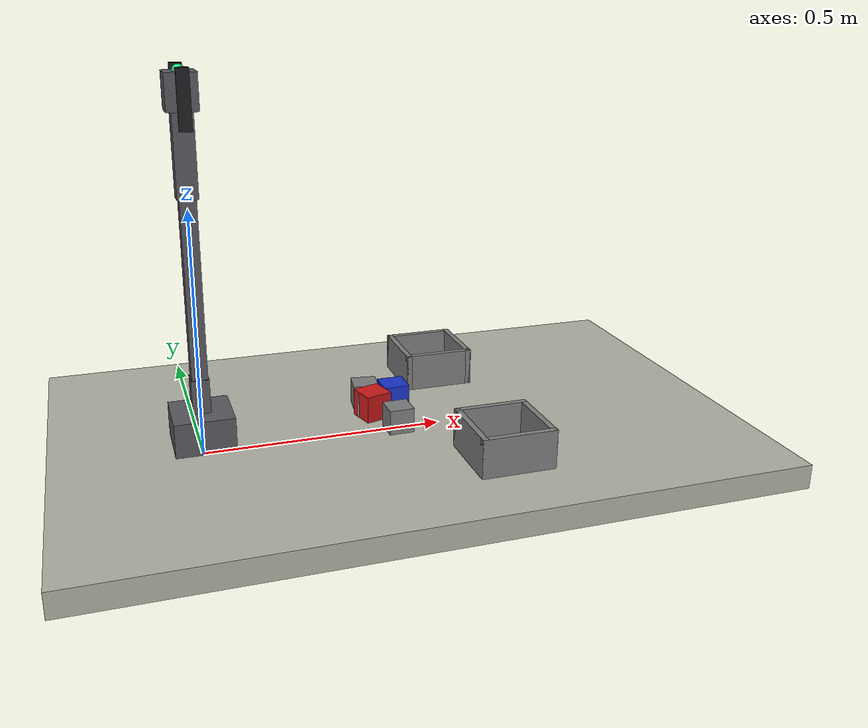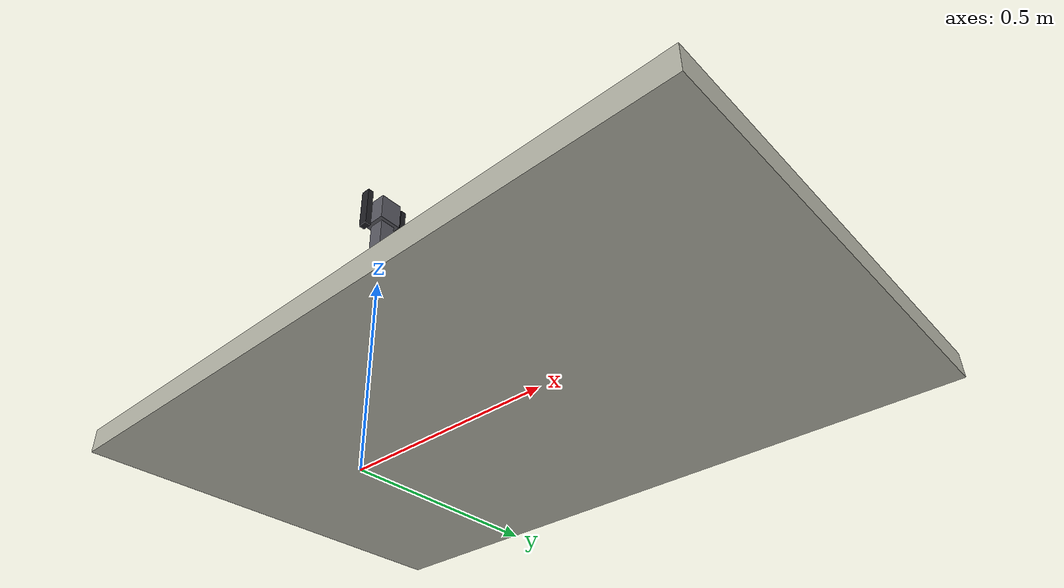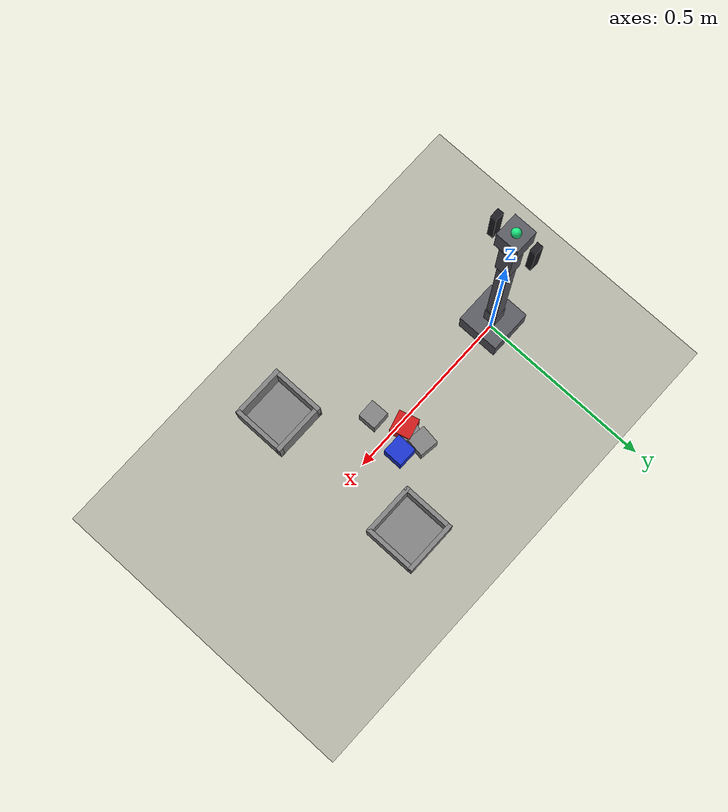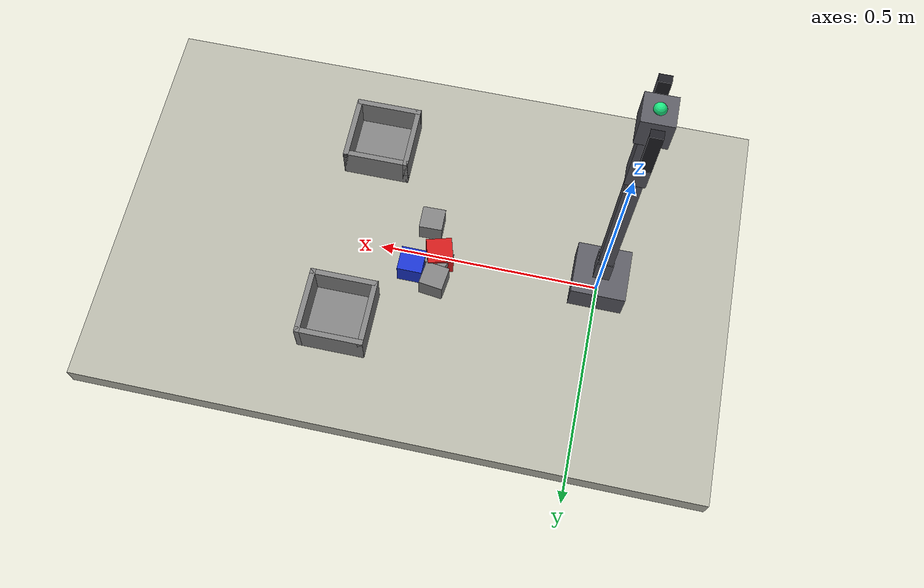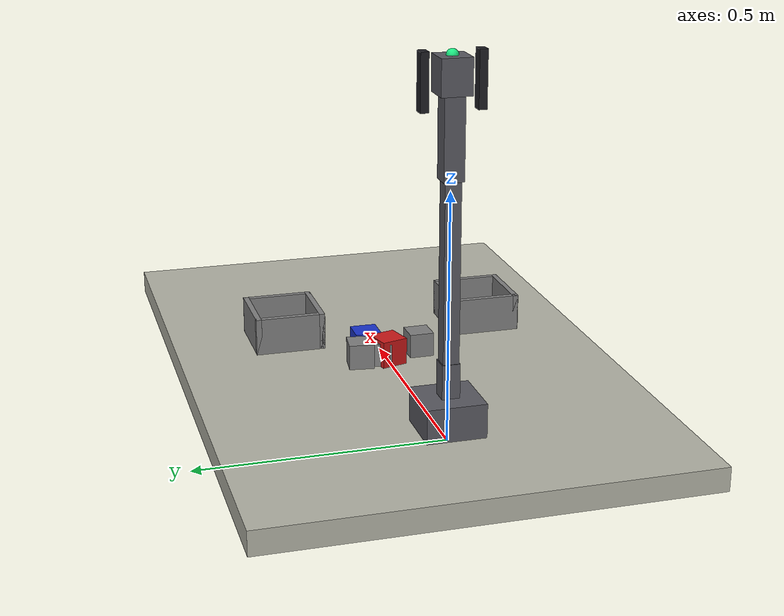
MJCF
<mujoco model="Autonomous reference tabletop arm scene_task_req_a_tabletop_robot_arm_that_sorts_red_and_blue_blo_edge_case_001">
  <compiler angle="radian" coordinate="local" />
  <option timestep="0.002" gravity="0 0 -9.81" />
  <!-- scene_set_id=scenes_task_req_a_tabletop_robot_arm_that_sorts_red_and_blue_blo_edge_case scene_id=scene_task_req_a_tabletop_robot_arm_that_sorts_red_and_blue_blo_edge_case_001 -->
  <default>
    <joint damping="0.8" armature="0.01" />
    <geom friction="1 0.1 0.01" />
  </default>
  <asset>
    <material name="mat_red" rgba="0.8 0.1 0.1 1" />
    <material name="mat_blue" rgba="0.1 0.2 0.8 1" />
    <material name="mat_gray" rgba="0.5 0.5 0.5 1" />
    <material name="mat_link" rgba="0.35 0.35 0.38 1" />
  </asset>
  <worldbody>
    <light name="key" pos="0 0 2" dir="0 0 -1" />
    <geom name="table" type="box" size="0.7 0.45 0.025" pos="0.4 0 0" rgba="0.7 0.7 0.65 1" />
    <body name="base_link" pos="0.0 0.0 0.025">
      <geom name="base_link_geom" type="box" size="0.06 0.06 0.035" pos="0 0 0.035" mass="0.45" material="mat_link" />
      <body name="upper_link" pos="0.0 0.0 0.07">
        <joint name="base_yaw" type="hinge" axis="0.0 0.0 1.0" pos="0 0 0" limited="true" range="-3.14 3.14" />
        <geom name="upper_link_geom" type="box" size="0.018 0.018 0.035" pos="0 0 0.035" mass="0.22" material="mat_link" />
        <body name="forearm_link" pos="0.0 0.0 0.07">
          <joint name="shoulder_pitch" type="hinge" axis="0.0 1.0 0.0" pos="0 0 0" limited="true" range="-1.57 1.57" />
          <geom name="forearm_link_geom" type="box" size="0.016 0.016 0.1785" pos="0 0 0.1785" mass="0.18" material="mat_link" />
          <body name="wrist_link" pos="0.0 0.0 0.357">
            <joint name="elbow_pitch" type="hinge" axis="0.0 1.0 0.0" pos="0 0 0" limited="true" range="-1.57 1.57" />
            <geom name="wrist_link_geom" type="box" size="0.02 0.02 0.08" pos="0 0 0.08" mass="0.035" material="mat_link" />
            <camera name="wrist_rgbd_camera" pos="0.03 0.0 0.04" xyaxes="0 -1 0 0 0 1" mode="fixed" user="0.0 0.0 0.0" />
            <body name="gripper_link" pos="0.0 0.0 0.16">
              <geom name="gripper_link_geom" type="box" size="0.03 0.03 0.035" pos="0 0 0.035" mass="0.04" material="mat_link" />
              <site name="ee_site" pos="0 0 0.07" size="0.012" rgba="0.1 0.9 0.5 1" />
              <site name="grasp_site" pos="0 0 0.015" size="0.01" rgba="1 0.7 0.1 1" />
              <body name="left_gripper_finger" pos="0 0.055 0.07">
                <joint name="left_gripper_slide" type="slide" axis="0 -1 0" limited="true" range="0 0.04" damping="2.0" />
                <geom name="left_gripper_pad" type="box" size="0.012 0.008 0.055" pos="0 0 -0.045" mass="0.025" rgba="0.12 0.12 0.14 1" friction="1.5 0.1 0.01" />
              </body>
              <body name="right_gripper_finger" pos="0 -0.055 0.07">
                <joint name="right_gripper_slide" type="slide" axis="0 1 0" limited="true" range="0 0.04" damping="2.0" />
                <geom name="right_gripper_pad" type="box" size="0.012 0.008 0.055" pos="0 0 -0.045" mass="0.025" rgba="0.12 0.12 0.14 1" friction="1.5 0.1 0.01" />
              </body>
            </body>
          </body>
        </body>
      </body>
    </body>
    <body name="obj_red_block" pos="0.36 0.0192 0.0547" euler="0 0 1.8445">
      <freejoint name="free_red_block" />
      <geom name="red_block" type="box" size="0.0287 0.0287 0.0287" mass="0.0607" friction="0.833 0.1 0.01" material="mat_red" />
    </body>
    <body name="obj_blue_block" pos="0.4165 0.0539 0.0539" euler="0 0 -0.0059">
      <freejoint name="free_blue_block" />
      <geom name="blue_block" type="box" size="0.0279 0.0279 0.0279" mass="0.0489" friction="0.843 0.1 0.01" material="mat_blue" />
    </body>
    <geom name="red_bin" type="box" size="0.07 0.07 0.004" pos="0.55 -0.24 0.029" material="mat_gray" />
    <geom name="red_bin_wall_px" type="box" size="0.006 0.07600000000000001 0.04" pos="0.62 -0.24 0.065" material="mat_gray" />
    <geom name="red_bin_wall_nx" type="box" size="0.006 0.07600000000000001 0.04" pos="0.48 -0.24 0.065" material="mat_gray" />
    <geom name="red_bin_wall_py" type="box" size="0.07600000000000001 0.006 0.04" pos="0.55 -0.17 0.065" material="mat_gray" />
    <geom name="red_bin_wall_ny" type="box" size="0.07600000000000001 0.006 0.04" pos="0.55 -0.31 0.065" material="mat_gray" />
    <geom name="blue_bin" type="box" size="0.07 0.07 0.004" pos="0.55 0.2063 0.029" material="mat_gray" />
    <geom name="blue_bin_wall_px" type="box" size="0.006 0.07600000000000001 0.04" pos="0.62 0.2063 0.065" material="mat_gray" />
    <geom name="blue_bin_wall_nx" type="box" size="0.006 0.07600000000000001 0.04" pos="0.48 0.2063 0.065" material="mat_gray" />
    <geom name="blue_bin_wall_py" type="box" size="0.07600000000000001 0.006 0.04" pos="0.55 0.2763 0.065" material="mat_gray" />
    <geom name="blue_bin_wall_ny" type="box" size="0.07600000000000001 0.006 0.04" pos="0.55 0.1363 0.065" material="mat_gray" />
    <body name="obj_distractor_1_0" pos="0.36 0.0803 0.0529" euler="0 0 -1.7005">
      <freejoint name="free_distractor_1_0" />
      <geom name="distractor_1_0" type="box" size="0.0269 0.0269 0.0269" mass="0.0483" friction="1.033 0.1 0.01" material="mat_gray" />
    </body>
    <body name="obj_distractor_1_1" pos="0.3928 -0.0581 0.052" euler="0 0 -3.1243">
      <freejoint name="free_distractor_1_1" />
      <geom name="distractor_1_1" type="box" size="0.026 0.026 0.026" mass="0.0497" friction="1.19 0.1 0.01" material="mat_gray" />
    </body>
    <body name="obj_distractor_1_2" pos="0.36 0.0337 0.051" euler="0 0 1.1842">
      <freejoint name="free_distractor_1_2" />
      <geom name="distractor_1_2" type="box" size="0.025 0.025 0.025" mass="0.0561" friction="0.852 0.1 0.01" material="mat_gray" />
    </body>
  </worldbody>
  <actuator>
    <motor name="base_yaw_motor" joint="base_yaw" gear="1" forcerange="-12.0 12.0" />
    <motor name="shoulder_pitch_motor" joint="shoulder_pitch" gear="1" forcerange="-12.0 12.0" />
    <motor name="elbow_pitch_motor" joint="elbow_pitch" gear="1" forcerange="-12.0 12.0" />
    <motor name="left_gripper_slide_motor" joint="left_gripper_slide" gear="1" forcerange="-25 25" />
    <motor name="right_gripper_slide_motor" joint="right_gripper_slide" gear="1" forcerange="-25 25" />
  </actuator>
  <sensor>
    <framepos name="wrist_rgbd_camera_pose" objtype="camera" objname="wrist_rgbd_camera" />
    <framequat name="wrist_rgbd_camera_orientation" objtype="camera" objname="wrist_rgbd_camera" />
  </sensor>
</mujoco>
